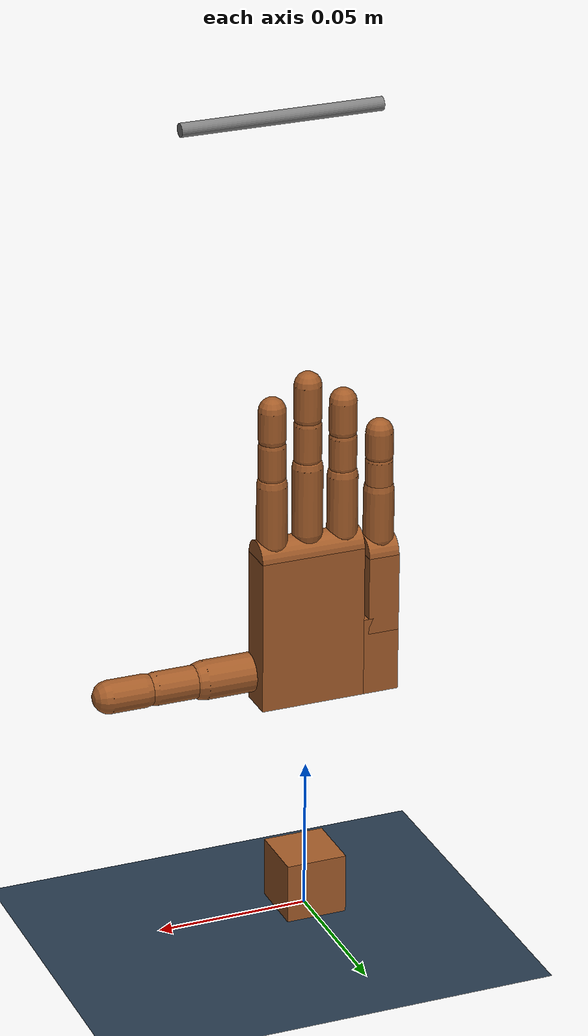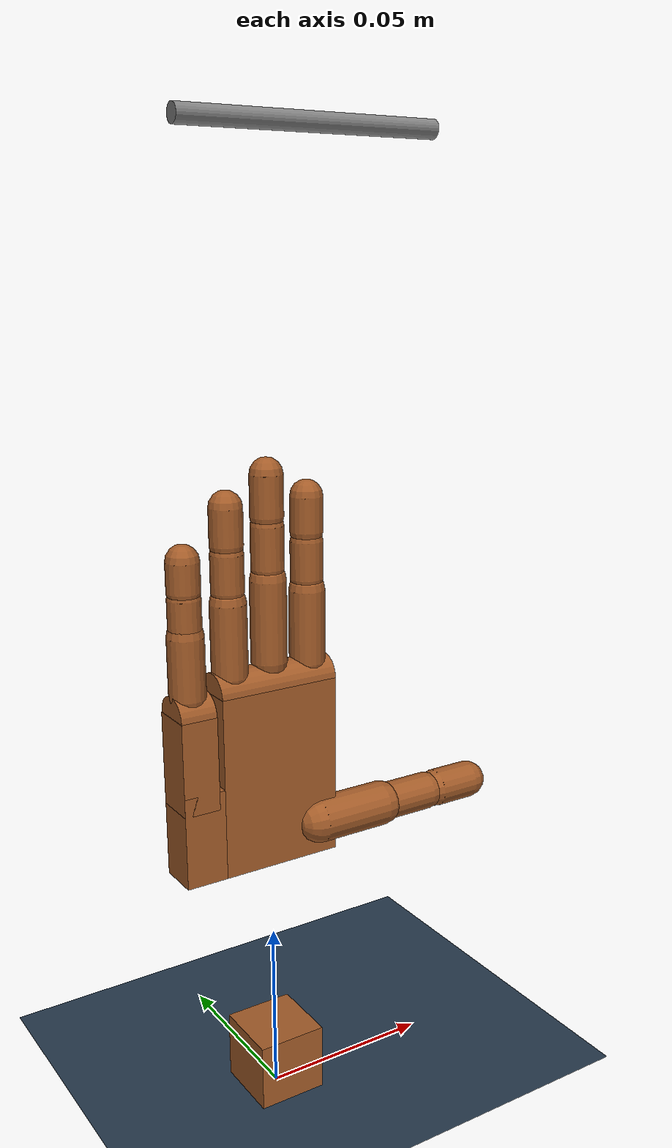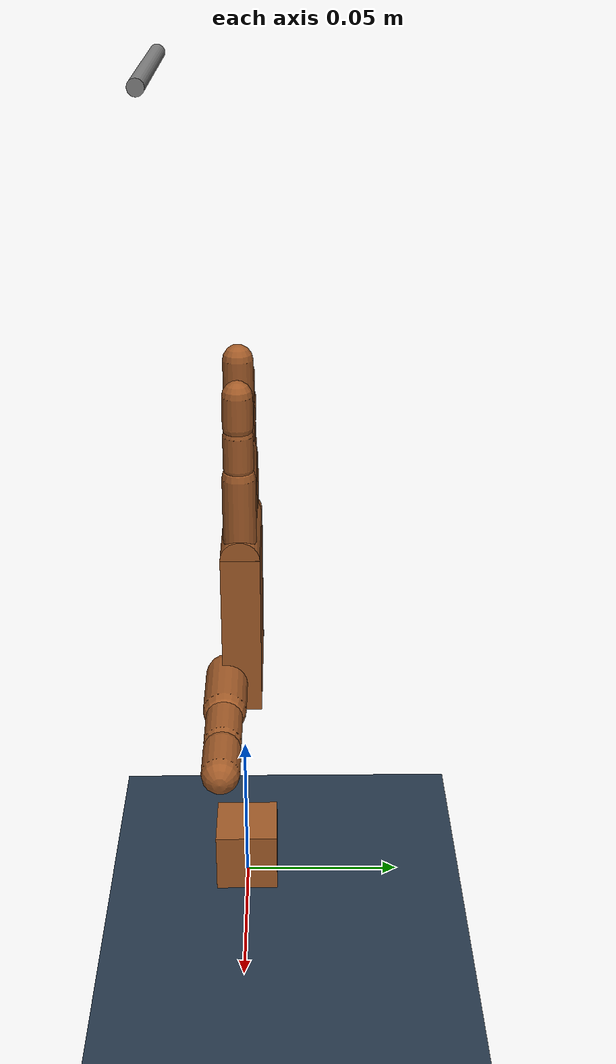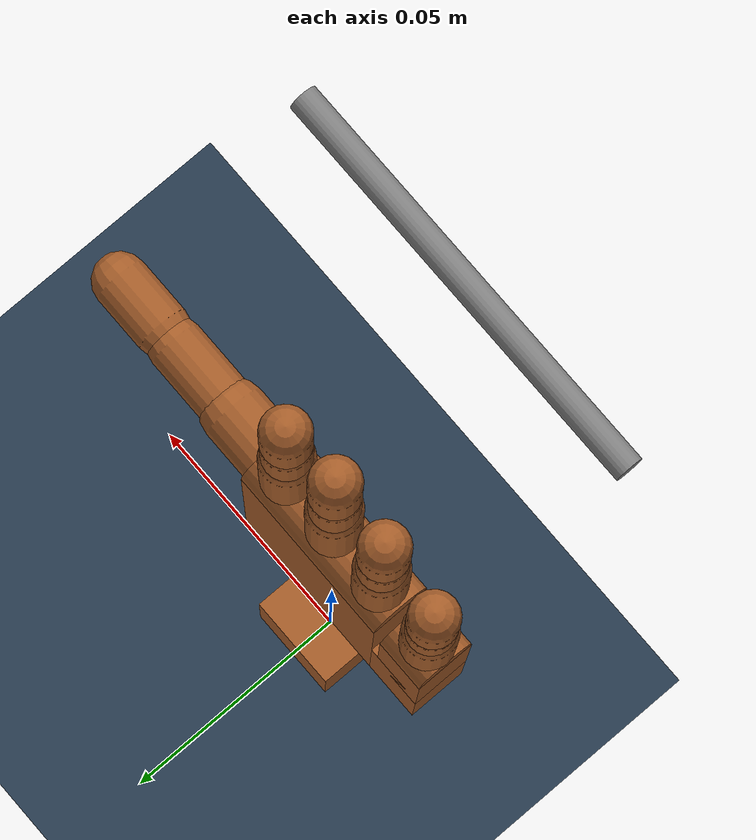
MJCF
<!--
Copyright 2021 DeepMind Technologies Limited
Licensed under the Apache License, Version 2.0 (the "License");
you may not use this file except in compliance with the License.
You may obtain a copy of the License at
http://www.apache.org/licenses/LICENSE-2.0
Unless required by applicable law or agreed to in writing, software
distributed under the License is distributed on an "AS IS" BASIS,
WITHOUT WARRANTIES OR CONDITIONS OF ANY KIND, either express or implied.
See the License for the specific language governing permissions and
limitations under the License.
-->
<mujoco model="test_bench">

    <compiler inertiafromgeom="true" angle="degree"/>

    <default>
        <joint limited="true" damping="0.0001" stiffness="0.001" armature="0.00001" solimplimit="0.98 0.99 0.001 .5 1" solreflimit="0.02 1"/>
        <geom condim="6" material="matgeom" density="985" friction="1 0.005 0.0002" solimp="0.95 0.99 0.001 0.5 1" solref="0.005 1" />
        <motor ctrlrange="-1 1" ctrllimited="true" forcelimited="true" />
    </default>

    <option timestep="0.005" iterations="50" tolerance="1e-10" solver="Newton" jacobian="dense" cone="elliptic" impratio="1.0"/>

    <size nconmax="1000" njmax="5000" nstack="10000000" nuser_cam="3"/>

    <visual>
        <map force="0.1" zfar="30" znear="0.005"/>
        <rgba haze="0.15 0.25 0.35 1"/>
        <quality shadowsize="4096"/>
        <global offwidth="800" offheight="800"/>
    </visual>

    <asset>
        <texture type="skybox" builtin="gradient" rgb1="0.3 0.5 0.7" rgb2="0 0 0" width="512" height="512"/>

        <texture name="texplane" type="2d" builtin="checker" rgb1=".2 .3 .4" rgb2=".1 0.15 0.2" width="512" height="512" mark="cross" markrgb=".8 .8 .8"/>

        <texture name="texgeom" type="cube" builtin="flat" mark="cross" width="127" height="1278"
            rgb1="0.8 0.6 0.4" rgb2="0.8 0.6 0.4" markrgb="1 1 1" random="0.01"/>

        <material name="matplane" reflectance="0.3" texture="texplane" texrepeat="1 1" texuniform="true"/>

        <material name="matgeom" texture="texgeom" texuniform="true" rgba="0.8 0.6 .4 1"/>

		<material name="matmocap" texture="texgeom" texuniform="true" rgba="0.5 0 0.5 0.5"/>
    </asset>

    <worldbody>
        <geom name="floor" pos="0 0 0" size="0 0 .25" type="plane" material="matplane" condim="3"/>

        <light directional="false" diffuse=".4 .4 .4" specular="0 0 0" pos="0 0 10" dir="0 0 -1" castshadow="false"/>
        <light mode="targetbodycom" target="right_palm" directional="false" diffuse=".8 .8 .8" specular="0.3 0.3 0.3" pos="0 0 5.0" dir="0 0 -1"/>

		<body name="test_base" pos="0 0 0.01" >
			<geom type="box" size=".01 .01 .01"/>
			<body name="test_object2" pos="0 -.022 .25">
				<joint name="test_z" type="slide" axis="0 0 1" stiffness="150000" range="-1 1" damping="1000" armature=".1"/>
				<joint type="slide" axis="0 1 0" stiffness="0" range="-1 1" damping="1" armature=".1"/>
				<geom type="cylinder" pos="0 0 0" size=".002 .03" euler="0 90 0"/>
				<site name="touch" type="cylinder" pos="0 0 0" size=".0022 .033" euler="0 90 0"/>
			</body>
		</body>

		<body name="right_palm" pos="0 0 0.1">

			<joint name="base_axis" type="hinge" pos="0 0 0" axis="1 0 0" range="-.1 .1" damping=".2" armature=".01"/>

			<geom type="box" pos="0 0 0" size=".01712 .00584 .02532" condim="6"/>
			<geom type="box" pos="-.023 0 -0.0124" size=".00588 .00584 .01292" condim="6"/>
			<geom type="cylinder" pos="0 0 .02532" size=".00584 .01710" euler="0 90 0" condim="6"/>
			<site name="torque_right_wrist" type="sphere" size="0.002" pos="0 0 0" group="4"/>

			<!-- First Finger -->
			<body name="right_ffknuckle" pos="0.01177 0 0.02945">
				<joint name="robot:right_ff_side" type="hinge" pos="0 0 0" axis="0 1 0" range="-25 25" stiffness=".003" damping="0.0001" armature="0.00001"/>
				<joint name="robot:right_ff_knuckle" type="hinge" pos="0 0 0" axis="1 0 0" range="0 90" springref="45" stiffness="0.0008" damping="0.00005" armature="0.00001"/>
				<site name="torque_right_ff_knuckle" type="sphere" size="0.002" pos="0 0 0" group="4"/>
				<geom type="capsule" pos="0 0 .00992" size=".00489 .00992" condim="6" />
				<!--middle-->
				<body name="right_ffmiddle" pos="0 0 0.01985">
					<joint name="robot:right_ff_middle" type="hinge" pos="0 0 0" axis="1 0 0" range="-5 90" springref="45" stiffness="0.0006" damping="0.00005" armature="0.00001"/>
					<site name="torque_right_ff_middle" type="sphere" size="0.002" pos="0 0 0" group="4"/>
					<geom type="capsule" pos="0 0 .00806" size=".0044 .00501" condim="6"/>
					<!--distal-->
					<body name="right_ffdistal" pos="0 0 0.0135">
						<joint name="robot:right_ff_distal" type="hinge" pos="0 0 0" axis="1 0 0" range="0 90" springref="30" stiffness="0.0006" damping="0.00005" armature="0.00001"/>
						<site name="torque_right_ff_distal" type="sphere" size="0.002" pos="0 0 0" group="4"/>
						<geom type="capsule" pos="0 0 .00669" size=".0044 .00464" condim="6"/>
					</body>
				</body>
			</body>

			<!-- Middle Finger -->
			<body name="right_mfknuckle" pos="0 0 0.03152">
				<joint name="robot:right_mf_side" type="hinge" pos="0 0 0" axis="0 1 0" range="-25 25" stiffness=".003" damping="0.0001" armature="0.00001"/>
				<joint name="robot:right_mf_knuckle" type="hinge" pos="0 0 0" axis="1 0 0" range="0 90" springref="45" stiffness="0.0010" damping="0.00005" armature="0.00001"/>
				<site name="torque_right_mf_knuckle" type="sphere" size="0.002" pos="0 0 0" group="4"/>
				<geom type="capsule" pos="0 0 .011" size=".00489 .011" condim="6"/>
				<!--Middle-->
				<body name="right_mfmiddle" pos="0 0 0.022">
					<joint name="robot:right_mf_middle" type="hinge" pos="0 0 0" axis="1 0 0" range="-5 90" springref="45" stiffness="0.0007" damping="0.00005" armature="0.00001"/>
					<site name="torque_right_mf_middle" type="sphere" size="0.002" pos="0 0 0" group="4"/>
					<geom type="capsule" pos="0 0 .00867" size=".0044 .00562" condim="6"/>
					<!--Distal-->
					<body name="right_mfdistal" pos="0 0 0.0145">
						<joint name="robot:right_mf_distal" type="hinge" pos="0 0 0" axis="1 0 0" range="0 90" springref="30" stiffness="0.0006" damping="0.00005" armature="0.00001"/>
						<site name="torque_right_mf_distal" type="sphere" size="0.002" pos="0 0 0" group="4"/>
						<geom type="capsule" pos="0 0 .00742" size=".0044 .00538" condim="6"/>
					</body>
				</body>
			</body>

			<!-- Ring Finger -->
			<body name="right_rfknuckle" pos="-0.01177 0 0.02945">
				<joint name="robot:right_rf_side" type="hinge" pos="0 0 0" axis="0 1 0" range="-25 25" stiffness=".003" damping="0.0001" armature="0.00001"/>
				<joint name="robot:right_rf_knuckle" type="hinge" pos="0 0 0" axis="1 0 0" range="0 105" springref="45" stiffness="0.0009" damping="0.00005" armature="0.00001"/>
				<site name="torque_right_rf_knuckle" type="sphere" size="0.002" pos="0 0 0" group="4"/>
				<geom type="capsule" pos="0 0 .00978" size=".00489 .00978" condim="6"/>
				<!--Middle-->
				<body name="right_rfmiddle" pos="0 0 0.01956">
					<joint name="robot:right_rf_middle" type="hinge" pos="0 0 0" axis="1 0 0" range="-5 90" springref="45" stiffness="0.0007" damping="0.00005" armature="0.00001"/>
					<site name="torque_right_rf_middle" type="sphere" size="0.002" pos="0 0 0" group="4"/>
					<geom type="capsule" pos="0 0 .00793" size=".0044 .00489" condim="6"/>
					<!--Distal-->
					<body name="right_rfdistal" pos="0 0 0.013">
						<joint name="robot:right_rf_distal" type="hinge" pos="0 0 0" axis="1 0 0" range="0 90" springref="30" stiffness="0.0006" damping="0.00005" armature="0.00001"/>
						<site name="torque_right_rf_distal" type="sphere" size="0.002" pos="0 0 0" group="4"/>
						<geom type="capsule" pos="0 0 .00684" size=".0044 .00479" condim="6"/>
					</body>
				</body>
			</body>

			<!-- Little Finger -->
			<body name="right_lfmetacarpal" pos="-0.01498 0 0.0031">
				<joint name="robot:right_lf_meta" type="hinge" pos="0 0 0" axis="0.571 0 0.821" range="0 40" stiffness=".01" damping=".001" armature="0.00001"/>
				<site name="torque_right_lf_meta" type="sphere" size="0.002" pos="0 0 0" group="4"/>
				<geom type="box" pos="-.00883 0 0.00517" size=".00508 .00584 .01292" condim="6"/>
				<geom type="cylinder" pos="-.00883 0 .01809" size=".00584 .005" euler="0 90 0" condim="6"/>
				<!--Proximal-->
				<body name="right_lfknuckle" pos="-0.00909 0 0.02273">
					<joint name="robot:right_lf_side" type="hinge" pos="0 0 0" axis="0 1 0" range="-25 25" stiffness="0.003" damping="0.0001" armature="0.00001"/>
					<joint name="robot:right_lf_knuckle" type="hinge" pos="0 0 0" axis="1 0 0" range="0 115" springref="45" stiffness="0.0007" damping="0.00005" armature="0.00001"/>
					<site name="torque_right_lf_knuckle" type="sphere" size="0.002" pos="0 0 0" group="4"/>
					<geom type="capsule" pos="0 0 .00816" size=".00489 .00816" condim="6"/>
					<!--Middle-->
					<body name="right_lfmiddle" pos="0 0 0.0166">
						<joint name="robot:right_lf_middle" type="hinge" pos="0 0 0" axis="1 0 0" range="-5 90" springref="45" stiffness="0.0006" damping="0.00005" armature="0.00001"/>
						<site name="torque_right_lf_middle" type="sphere" size="0.002" pos="0 0 0" group="4"/>
						<geom type="capsule" pos="0 0 .005" size=".0044 .00455" condim="6"/>
						<!--Distal-->
						<body name="right_lfdistal" pos="0 0 0.0092">
							<joint name="robot:right_lf_distal" type="hinge" pos="0 0 0" axis="1 0 0" range="0 90" springref="30" stiffness="0.0006" damping="0.00005" armature="0.00001"/>
							<site name="torque_right_lf_distal" type="sphere" size="0.002" pos="0 0 0" group="4"/>
							<geom type="capsule" pos="0 0 .00596" size=".0044 .00391" condim="6"/>
						</body>
					</body>
				</body>
			</body>

			<!-- Thumb -->
			<body name="right_thbase" pos="0.0123 -0.00473 -0.01602" euler="0 90 0">
				<joint name="robot:right_th_swivel" type="hinge" pos="0 0 0" axis="1 -1 0" range="-10 110" springref="40" stiffness="0.003" damping="0.0001" armature="0.00001"/>
				<joint name="robot:right_th_adduction" type="hinge" pos="0 0 0" axis="1 2 0" range="-60 0" springref="-35" stiffness="0.004" damping="0.0001" armature="0.00001"/>
				<joint name="robot:right_th_rot" type="hinge" pos="0 0 0" axis="0 0 1" range="-20 25" springref="0" stiffness="0.001" damping="0.0001" armature="0.00001"/>
				<site name="torque_right_th_base" type="sphere" size="0.002" pos="0 0 0" group="4"/>
				<geom type="capsule" pos="0 0 .01027" size=".00636 .01027" condim="6"/>
				<!--Hub-->
				<body name="right_thhub" pos="0 0 0.02125">
					<joint name="robot:right_th_pivot" type="hinge" pos="0 0 0" axis="1 0 0" range="-15 15" springref="0" stiffness="0.002" damping="0.0001" armature="0.00001"/>
					<joint name="robot:right_th_middle" type="hinge" pos="0 0 0" axis="0 -1 0" range="0 90" springref="30" stiffness="0.003" damping="0.0001" armature="0.00001"/>
					<site name="torque_right_th_hub" type="sphere" size="0.002" pos="0 0 0" group="4"/>
					<geom type="capsule" pos="0 0 .0085" size=".00538 .00697" condim="6"/>
					<!--Distal-->
					<body name="right_thdistal" pos="0 0 0.015">
						<joint name="robot:right_th_distal" type="hinge" pos="0 0 0" axis="0 -1 0" range="0 90" springref="30" stiffness="0.003" damping="0.0001" armature="0.00001"/>
						<site name="torque_right_th_distal" type="sphere" size="0.002" pos="0 0 0" group="4"/>
						<geom type="capsule" pos="0 0 .00996" size=".00538 .00587" condim="6"/>
					</body>
				</body>
			</body>

		</body>

    </worldbody>

	<tendon>
		<fixed name="right_ff_couple" limited="true" range="-1.5 1.5" stiffness=".0619" springlength="0">
			<joint joint="robot:right_ff_middle" coef=".9"/>
			<joint joint="robot:right_ff_distal" coef="-1"/>
		</fixed>
		<fixed name="right_mf_couple" limited="true" range="-1.5 1.5" stiffness=".117" springlength="0">
			<joint joint="robot:right_mf_middle" coef=".9"/>
			<joint joint="robot:right_mf_distal" coef="-1"/>
		</fixed>
		<fixed name="right_rf_couple" limited="true" range="-1.5 1.5" stiffness=".078" springlength="0">
			<joint joint="robot:right_rf_middle" coef=".9"/>
			<joint joint="robot:right_rf_distal" coef="-1"/>
		</fixed>
		<fixed name="right_lf_couple" limited="true" range="-1.5 1.5" stiffness=".0196" springlength="0">
			<joint joint="robot:right_lf_middle" coef=".9"/>
			<joint joint="robot:right_lf_distal" coef="-1"/>
		</fixed>
		<fixed name="right_th_couple" limited="true" range="-1.5 1.5" stiffness=".0378" springlength="0">
			<joint joint="robot:right_th_middle" coef=".9"/>
			<joint joint="robot:right_th_distal" coef="-1"/>
		</fixed>
	</tendon>

    <actuator>
		<motor name="act:right_ff_side" gear=".005" joint="robot:right_ff_side" forcerange="-1 1"/>
		<motor name="act:right_ff_knuckle" gear=".0619" joint="robot:right_ff_knuckle" forcerange="-.345 1"/>
		<motor name="act:right_ff_middle" gear=".02063" joint="robot:right_ff_middle" forcerange="-.345 1"/>
		<motor name="act:right_ff_digits" gear=".01548" joint="robot:right_ff_distal" forcerange="-.345 1"/>

		<motor name="act:right_mf_side" gear=".005" joint="robot:right_mf_side" forcerange="-1 1"/>
		<motor name="act:right_mf_knuckle" gear=".117" joint="robot:right_mf_knuckle" forcerange="-.345 1"/>
		<motor name="act:right_mf_middle" gear=".039" joint="robot:right_mf_middle" forcerange="-.345 1"/>
		<motor name="act:right_mf_distal" gear=".02925" joint="robot:right_mf_distal" forcerange="-.345 1"/>

		<motor name="act:right_rf_side" gear=".005" joint="robot:right_rf_side" forcerange="-1 1"/>
		<motor name="act:right_rf_knuckle" gear=".078" joint="robot:right_rf_knuckle" forcerange="-.345 1"/>
		<motor name="act:right_rf_middle" gear=".026" joint="robot:right_rf_middle" forcerange="-.345 1"/>
		<motor name="act:right_rf_digits" gear=".0195" joint="robot:right_rf_distal" forcerange="-.345 1"/>

		<motor name="act:right_lf_side" gear=".005" joint="robot:right_lf_side" forcerange="-1 1"/>
		<motor name="act:right_lf_meta" gear=".064" joint="robot:right_lf_meta" forcerange="-.345 1"/>
		<motor name="act:right_lf_knuckle" gear=".0196" joint="robot:right_lf_knuckle" forcerange="-.345 1"/>
		<motor name="act:right_lf_middle" gear=".00653" joint="robot:right_lf_middle" forcerange="-.345 1"/>
		<motor name="act:right_lf_digits" gear=".00490" joint="robot:right_lf_distal" forcerange="-.345 1"/>

		<motor name="act:right_thumb_side" gear=".03" joint="robot:right_th_swivel" forcerange="-1 1"/>
		<motor name="act:right_thumb_add" gear=".04" joint="robot:right_th_adduction" forcerange="-1 1"/>
		<motor name="act:right_thumb_rotation" gear=".01" joint="robot:right_th_rot" forcerange="-1 1"/>
		<motor name="act:right_thumb_pivot" gear=".1" joint="robot:right_th_pivot" forcerange="-1 1"/>
		<motor name="act:right_thumb_middle" gear=".126" joint="robot:right_th_middle" forcerange="-1 1"/>
		<motor name="act:right_thumb_distal" gear=".0945" joint="robot:right_th_distal" forcerange="-1 1"/>

	</actuator>

	<sensor>
		<torque name="proprio:right_ff_knuckle" site="torque_right_ff_knuckle"/>
		<torque name="proprio:right_ff_middle" site="torque_right_ff_middle"/>
		<torque name="proprio:right_ff_distal" site="torque_right_ff_distal"/>

		<torque name="proprio:right_mf_knuckle" site="torque_right_mf_knuckle"/>
		<torque name="proprio:right_mf_middle" site="torque_right_mf_middle"/>
		<torque name="proprio:right_mf_distal" site="torque_right_mf_distal"/>

		<torque name="proprio:right_rf_knuckle" site="torque_right_rf_knuckle"/>
		<torque name="proprio:right_rf_middle" site="torque_right_rf_middle"/>
		<torque name="proprio:right_rf_distal" site="torque_right_rf_distal"/>

		<torque name="proprio:right_lf_meta" site="torque_right_lf_meta"/>
		<torque name="proprio:right_lf_knuckle" site="torque_right_lf_knuckle"/>
		<torque name="proprio:right_lf_middle" site="torque_right_lf_middle"/>
		<torque name="proprio:right_lf_distal" site="torque_right_lf_distal"/>

		<torque name="proprio:right_th_base" site="torque_right_th_base"/>
		<torque name="proprio:right_th_hub" site="torque_right_th_hub"/>
		<torque name="proprio:right_th_distal" site="torque_right_th_distal"/>
	</sensor>

</mujoco>
